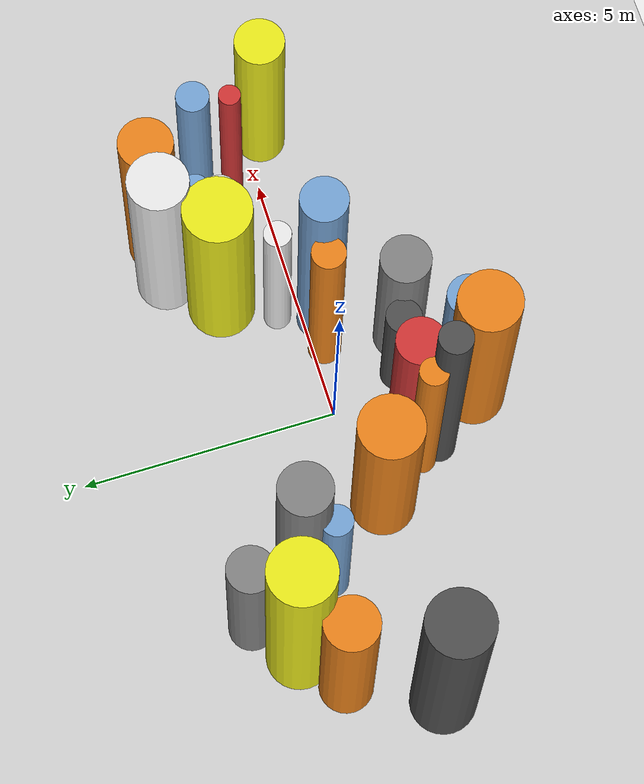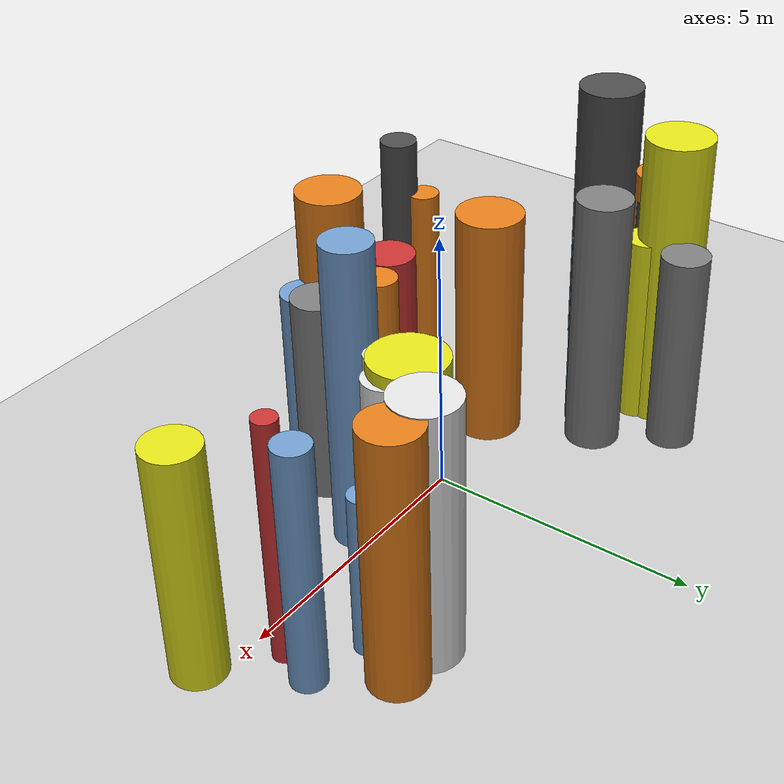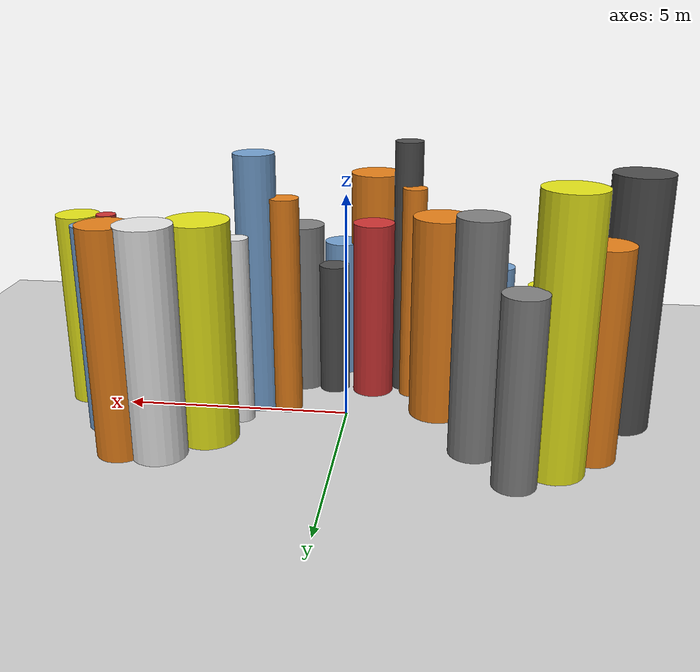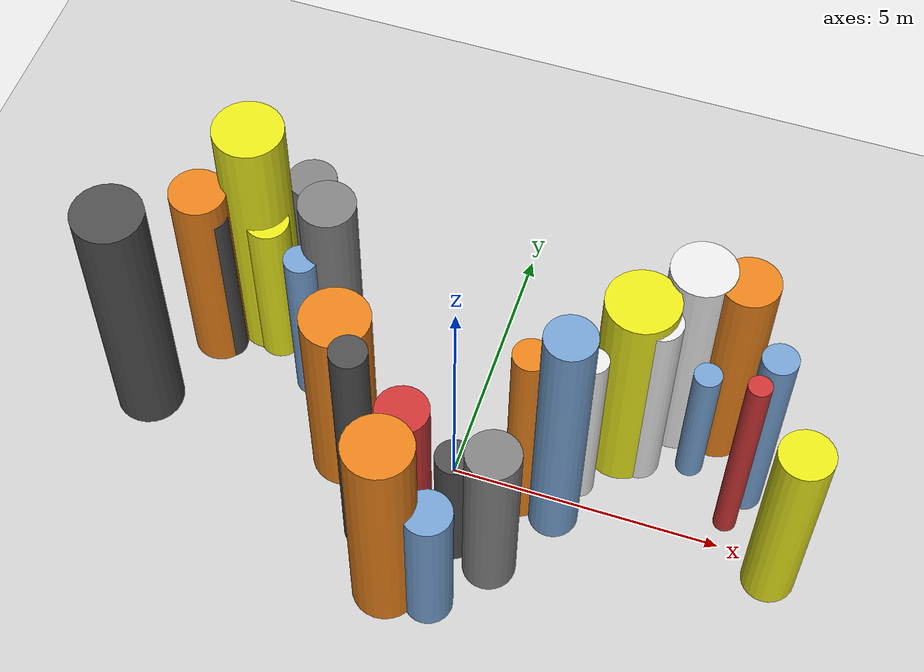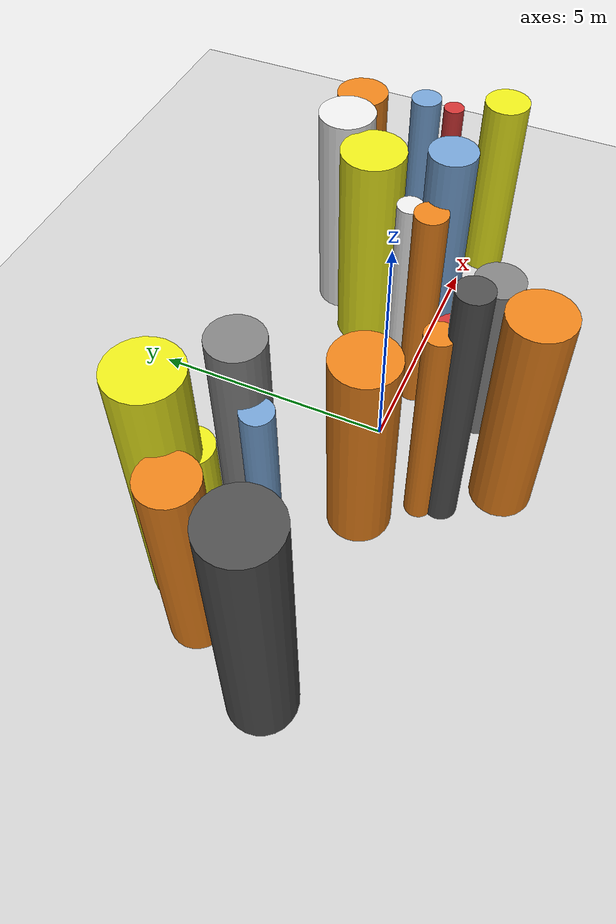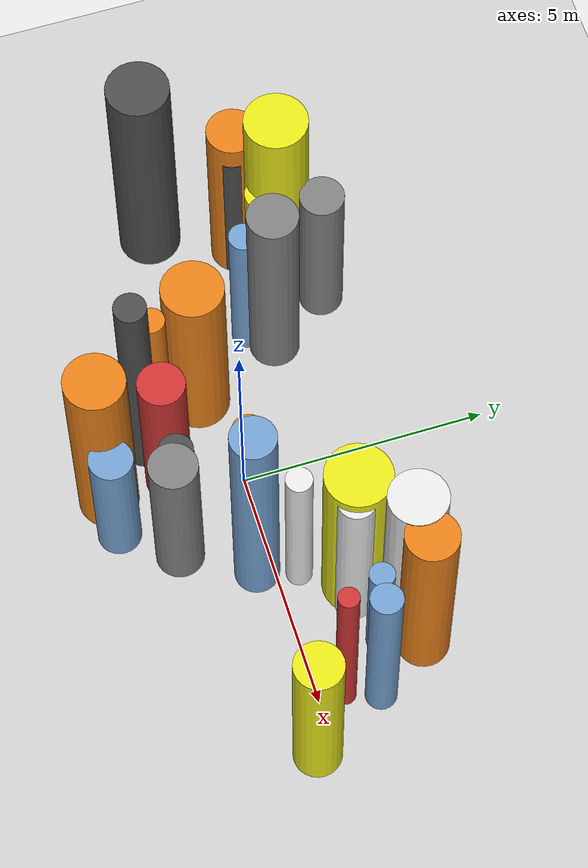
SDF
<?xml version='1.0'?>
<sdf version='1.6'>
  <world name='routeA_rl_v1__dense_recovery__rl_train__s_turn_multi_obstacle__000095'>
    <!-- Sun light -->
    <light name='sun' type='directional'>
      <cast_shadows>1</cast_shadows>
      <pose>0 0 10 0 0 0</pose>
      <diffuse>0.8 0.8 0.8 1</diffuse>
      <specular>0.2 0.2 0.2 1</specular>
      <attenuation>
        <range>1000</range>
        <constant>0.9</constant>
        <linear>0.01</linear>
        <quadratic>0.001</quadratic>
      </attenuation>
      <direction>-0.5 0.1 -0.9</direction>
    </light>

    <!-- Ground plane -->
    <model name='ground_plane'>
      <static>1</static>
      <link name='link'>
        <collision name='collision'>
          <geometry>
            <plane>
              <normal>0 0 1</normal>
              <size>100 100</size>
            </plane>
          </geometry>
          <surface>
            <contact>
              <collide_bitmask>65535</collide_bitmask>
              <ode/>
            </contact>
            <friction>
              <ode>
                <mu>100</mu>
                <mu2>50</mu2>
              </ode>
              <torsional><ode/></torsional>
            </friction>
            <bounce/>
          </surface>
          <max_contacts>10</max_contacts>
        </collision>
        <visual name='visual'>
          <cast_shadows>0</cast_shadows>
          <geometry>
            <plane>
              <normal>0 0 1</normal>
              <size>100 100</size>
            </plane>
          </geometry>
          <material>
            <script>
              <uri>file://media/materials/scripts/gazebo.material</uri>
              <n>Gazebo/Grey</n>
            </script>
          </material>
        </visual>
      </link>
    </model>

    <!-- Environment -->
    <magnetic_field>6e-06 2.3e-05 -4.2e-05</magnetic_field>
    <atmosphere type='adiabatic'/>
    <physics name='default_physics' default='0' type='ode'>
      <gravity>0 0 -9.8</gravity>
      <max_step_size>0.004</max_step_size>
      <real_time_factor>1</real_time_factor>
      <real_time_update_rate>250</real_time_update_rate>
    </physics>
    <scene>
      <ambient>0.4 0.4 0.4 1</ambient>
      <background>0.7 0.7 0.7 1</background>
      <shadows>1</shadows>
    </scene>
    <wind/>
    <spherical_coordinates>
      <surface_model>EARTH_WGS84</surface_model>
      <latitude_deg>0</latitude_deg>
      <longitude_deg>0</longitude_deg>
      <elevation>0</elevation>
      <heading_deg>0</heading_deg>
    </spherical_coordinates>

    <!-- ============ OBSTACLES (28) ============ -->
    <model name='s_turn_obs_0'>
      <static>1</static>
      <link name='link'>
        <visual name='visual'>
          <geometry>
            <cylinder>
              <radius>0.6328</radius>
              <length>5.5574</length>
            </cylinder>
          </geometry>
          <material>
            <script>
              <n>Gazebo/DarkGrey</n>
              <uri>file://media/materials/scripts/gazebo.material</uri>
            </script>
            <ambient>0.3 0.3 0.3 1</ambient>
          </material>
        </visual>
        <collision name='collision'>
          <geometry>
            <cylinder>
              <radius>0.6328</radius>
              <length>5.5574</length>
            </cylinder>
          </geometry>
          <max_contacts>10</max_contacts>
          <surface>
            <contact><ode/></contact>
            <bounce/>
            <friction>
              <ode><mu>1</mu><mu2>1</mu2></ode>
              <torsional><ode/></torsional>
            </friction>
          </surface>
        </collision>
      </link>
      <pose>-6.0000 -0.2310 2.7787 0 0 0.0000</pose>
    </model>

    <model name='s_turn_obs_1'>
      <static>1</static>
      <link name='link'>
        <visual name='visual'>
          <geometry>
            <cylinder>
              <radius>0.5158</radius>
              <length>4.4996</length>
            </cylinder>
          </geometry>
          <material>
            <script>
              <n>Gazebo/Orange</n>
              <uri>file://media/materials/scripts/gazebo.material</uri>
            </script>
            <ambient>0.9 0.5 0.1 1</ambient>
          </material>
        </visual>
        <collision name='collision'>
          <geometry>
            <cylinder>
              <radius>0.5158</radius>
              <length>4.4996</length>
            </cylinder>
          </geometry>
          <max_contacts>10</max_contacts>
          <surface>
            <contact><ode/></contact>
            <bounce/>
            <friction>
              <ode><mu>1</mu><mu2>1</mu2></ode>
              <torsional><ode/></torsional>
            </friction>
          </surface>
        </collision>
      </link>
      <pose>-5.2000 1.4091 2.2498 0 0 0.0000</pose>
    </model>

    <model name='s_turn_obs_2'>
      <static>1</static>
      <link name='link'>
        <visual name='visual'>
          <geometry>
            <cylinder>
              <radius>0.6329</radius>
              <length>5.7166</length>
            </cylinder>
          </geometry>
          <material>
            <script>
              <n>Gazebo/Yellow</n>
              <uri>file://media/materials/scripts/gazebo.material</uri>
            </script>
            <ambient>0.9 0.9 0.1 1</ambient>
          </material>
        </visual>
        <collision name='collision'>
          <geometry>
            <cylinder>
              <radius>0.6329</radius>
              <length>5.7166</length>
            </cylinder>
          </geometry>
          <max_contacts>10</max_contacts>
          <surface>
            <contact><ode/></contact>
            <bounce/>
            <friction>
              <ode><mu>1</mu><mu2>1</mu2></ode>
              <torsional><ode/></torsional>
            </friction>
          </surface>
        </collision>
      </link>
      <pose>-4.4000 2.0710 2.8583 0 0 0.0000</pose>
    </model>

    <model name='s_turn_obs_3'>
      <static>1</static>
      <link name='link'>
        <visual name='visual'>
          <geometry>
            <cylinder>
              <radius>0.4479</radius>
              <length>3.9116</length>
            </cylinder>
          </geometry>
          <material>
            <script>
              <n>Gazebo/Grey</n>
              <uri>file://media/materials/scripts/gazebo.material</uri>
            </script>
            <ambient>0.5 0.5 0.5 1</ambient>
          </material>
        </visual>
        <collision name='collision'>
          <geometry>
            <cylinder>
              <radius>0.4479</radius>
              <length>3.9116</length>
            </cylinder>
          </geometry>
          <max_contacts>10</max_contacts>
          <surface>
            <contact><ode/></contact>
            <bounce/>
            <friction>
              <ode><mu>1</mu><mu2>1</mu2></ode>
              <torsional><ode/></torsional>
            </friction>
          </surface>
        </collision>
      </link>
      <pose>-3.6000 2.7536 1.9558 0 0 0.0000</pose>
    </model>

    <model name='s_turn_obs_4'>
      <static>1</static>
      <link name='link'>
        <visual name='visual'>
          <geometry>
            <cylinder>
              <radius>0.5116</radius>
              <length>5.0095</length>
            </cylinder>
          </geometry>
          <material>
            <script>
              <n>Gazebo/Grey</n>
              <uri>file://media/materials/scripts/gazebo.material</uri>
            </script>
            <ambient>0.5 0.5 0.5 1</ambient>
          </material>
        </visual>
        <collision name='collision'>
          <geometry>
            <cylinder>
              <radius>0.5116</radius>
              <length>5.0095</length>
            </cylinder>
          </geometry>
          <max_contacts>10</max_contacts>
          <surface>
            <contact><ode/></contact>
            <bounce/>
            <friction>
              <ode><mu>1</mu><mu2>1</mu2></ode>
              <torsional><ode/></torsional>
            </friction>
          </surface>
        </collision>
      </link>
      <pose>-2.8000 1.5076 2.5048 0 0 0.0000</pose>
    </model>

    <model name='s_turn_obs_5'>
      <static>1</static>
      <link name='link'>
        <visual name='visual'>
          <geometry>
            <cylinder>
              <radius>0.6219</radius>
              <length>4.5238</length>
            </cylinder>
          </geometry>
          <material>
            <script>
              <n>Gazebo/Orange</n>
              <uri>file://media/materials/scripts/gazebo.material</uri>
            </script>
            <ambient>0.9 0.5 0.1 1</ambient>
          </material>
        </visual>
        <collision name='collision'>
          <geometry>
            <cylinder>
              <radius>0.6219</radius>
              <length>4.5238</length>
            </cylinder>
          </geometry>
          <max_contacts>10</max_contacts>
          <surface>
            <contact><ode/></contact>
            <bounce/>
            <friction>
              <ode><mu>1</mu><mu2>1</mu2></ode>
              <torsional><ode/></torsional>
            </friction>
          </surface>
        </collision>
      </link>
      <pose>-2.0000 -0.3390 2.2619 0 0 0.0000</pose>
    </model>

    <model name='s_turn_obs_6'>
      <static>1</static>
      <link name='link'>
        <visual name='visual'>
          <geometry>
            <cylinder>
              <radius>0.3187</radius>
              <length>5.8544</length>
            </cylinder>
          </geometry>
          <material>
            <script>
              <n>Gazebo/DarkGrey</n>
              <uri>file://media/materials/scripts/gazebo.material</uri>
            </script>
            <ambient>0.3 0.3 0.3 1</ambient>
          </material>
        </visual>
        <collision name='collision'>
          <geometry>
            <cylinder>
              <radius>0.3187</radius>
              <length>5.8544</length>
            </cylinder>
          </geometry>
          <max_contacts>10</max_contacts>
          <surface>
            <contact><ode/></contact>
            <bounce/>
            <friction>
              <ode><mu>1</mu><mu2>1</mu2></ode>
              <torsional><ode/></torsional>
            </friction>
          </surface>
        </collision>
      </link>
      <pose>-1.2000 -1.7234 2.9272 0 0 0.0000</pose>
    </model>

    <model name='s_turn_obs_7'>
      <static>1</static>
      <link name='link'>
        <visual name='visual'>
          <geometry>
            <cylinder>
              <radius>0.6048</radius>
              <length>4.9542</length>
            </cylinder>
          </geometry>
          <material>
            <script>
              <n>Gazebo/Orange</n>
              <uri>file://media/materials/scripts/gazebo.material</uri>
            </script>
            <ambient>0.9 0.5 0.1 1</ambient>
          </material>
        </visual>
        <collision name='collision'>
          <geometry>
            <cylinder>
              <radius>0.6048</radius>
              <length>4.9542</length>
            </cylinder>
          </geometry>
          <max_contacts>10</max_contacts>
          <surface>
            <contact><ode/></contact>
            <bounce/>
            <friction>
              <ode><mu>1</mu><mu2>1</mu2></ode>
              <torsional><ode/></torsional>
            </friction>
          </surface>
        </collision>
      </link>
      <pose>-0.4000 -2.6859 2.4771 0 0 0.0000</pose>
    </model>

    <model name='s_turn_obs_8'>
      <static>1</static>
      <link name='link'>
        <visual name='visual'>
          <geometry>
            <cylinder>
              <radius>0.4381</radius>
              <length>3.2741</length>
            </cylinder>
          </geometry>
          <material>
            <script>
              <n>Gazebo/Blue</n>
              <uri>file://media/materials/scripts/gazebo.material</uri>
            </script>
            <ambient>0.447 0.624 0.812 1</ambient>
          </material>
        </visual>
        <collision name='collision'>
          <geometry>
            <cylinder>
              <radius>0.4381</radius>
              <length>3.2741</length>
            </cylinder>
          </geometry>
          <max_contacts>10</max_contacts>
          <surface>
            <contact><ode/></contact>
            <bounce/>
            <friction>
              <ode><mu>1</mu><mu2>1</mu2></ode>
              <torsional><ode/></torsional>
            </friction>
          </surface>
        </collision>
      </link>
      <pose>0.4000 -2.6880 1.6371 0 0 0.0000</pose>
    </model>

    <model name='s_turn_obs_9'>
      <static>1</static>
      <link name='link'>
        <visual name='visual'>
          <geometry>
            <cylinder>
              <radius>0.4829</radius>
              <length>3.9170</length>
            </cylinder>
          </geometry>
          <material>
            <script>
              <n>Gazebo/Grey</n>
              <uri>file://media/materials/scripts/gazebo.material</uri>
            </script>
            <ambient>0.5 0.5 0.5 1</ambient>
          </material>
        </visual>
        <collision name='collision'>
          <geometry>
            <cylinder>
              <radius>0.4829</radius>
              <length>3.9170</length>
            </cylinder>
          </geometry>
          <max_contacts>10</max_contacts>
          <surface>
            <contact><ode/></contact>
            <bounce/>
            <friction>
              <ode><mu>1</mu><mu2>1</mu2></ode>
              <torsional><ode/></torsional>
            </friction>
          </surface>
        </collision>
      </link>
      <pose>1.2000 -1.6720 1.9585 0 0 0.0000</pose>
    </model>

    <model name='s_turn_obs_10'>
      <static>1</static>
      <link name='link'>
        <visual name='visual'>
          <geometry>
            <cylinder>
              <radius>0.4491</radius>
              <length>5.7766</length>
            </cylinder>
          </geometry>
          <material>
            <script>
              <n>Gazebo/Blue</n>
              <uri>file://media/materials/scripts/gazebo.material</uri>
            </script>
            <ambient>0.447 0.624 0.812 1</ambient>
          </material>
        </visual>
        <collision name='collision'>
          <geometry>
            <cylinder>
              <radius>0.4491</radius>
              <length>5.7766</length>
            </cylinder>
          </geometry>
          <max_contacts>10</max_contacts>
          <surface>
            <contact><ode/></contact>
            <bounce/>
            <friction>
              <ode><mu>1</mu><mu2>1</mu2></ode>
              <torsional><ode/></torsional>
            </friction>
          </surface>
        </collision>
      </link>
      <pose>2.0000 -0.3300 2.8883 0 0 0.0000</pose>
    </model>

    <model name='s_turn_obs_11'>
      <static>1</static>
      <link name='link'>
        <visual name='visual'>
          <geometry>
            <cylinder>
              <radius>0.6571</radius>
              <length>4.7496</length>
            </cylinder>
          </geometry>
          <material>
            <script>
              <n>Gazebo/Yellow</n>
              <uri>file://media/materials/scripts/gazebo.material</uri>
            </script>
            <ambient>0.9 0.9 0.1 1</ambient>
          </material>
        </visual>
        <collision name='collision'>
          <geometry>
            <cylinder>
              <radius>0.6571</radius>
              <length>4.7496</length>
            </cylinder>
          </geometry>
          <max_contacts>10</max_contacts>
          <surface>
            <contact><ode/></contact>
            <bounce/>
            <friction>
              <ode><mu>1</mu><mu2>1</mu2></ode>
              <torsional><ode/></torsional>
            </friction>
          </surface>
        </collision>
      </link>
      <pose>2.8000 1.4303 2.3748 0 0 0.0000</pose>
    </model>

    <model name='s_turn_obs_12'>
      <static>1</static>
      <link name='link'>
        <visual name='visual'>
          <geometry>
            <cylinder>
              <radius>0.5816</radius>
              <length>4.8610</length>
            </cylinder>
          </geometry>
          <material>
            <script>
              <n>Gazebo/White</n>
              <uri>file://media/materials/scripts/gazebo.material</uri>
            </script>
            <ambient>0.9 0.9 0.9 1</ambient>
          </material>
        </visual>
        <collision name='collision'>
          <geometry>
            <cylinder>
              <radius>0.5816</radius>
              <length>4.8610</length>
            </cylinder>
          </geometry>
          <max_contacts>10</max_contacts>
          <surface>
            <contact><ode/></contact>
            <bounce/>
            <friction>
              <ode><mu>1</mu><mu2>1</mu2></ode>
              <torsional><ode/></torsional>
            </friction>
          </surface>
        </collision>
      </link>
      <pose>3.6000 2.3112 2.4305 0 0 0.0000</pose>
    </model>

    <model name='s_turn_obs_13'>
      <static>1</static>
      <link name='link'>
        <visual name='visual'>
          <geometry>
            <cylinder>
              <radius>0.5205</radius>
              <length>4.8434</length>
            </cylinder>
          </geometry>
          <material>
            <script>
              <n>Gazebo/Orange</n>
              <uri>file://media/materials/scripts/gazebo.material</uri>
            </script>
            <ambient>0.9 0.5 0.1 1</ambient>
          </material>
        </visual>
        <collision name='collision'>
          <geometry>
            <cylinder>
              <radius>0.5205</radius>
              <length>4.8434</length>
            </cylinder>
          </geometry>
          <max_contacts>10</max_contacts>
          <surface>
            <contact><ode/></contact>
            <bounce/>
            <friction>
              <ode><mu>1</mu><mu2>1</mu2></ode>
              <torsional><ode/></torsional>
            </friction>
          </surface>
        </collision>
      </link>
      <pose>4.4000 2.3098 2.4217 0 0 0.0000</pose>
    </model>

    <model name='s_turn_obs_14'>
      <static>1</static>
      <link name='link'>
        <visual name='visual'>
          <geometry>
            <cylinder>
              <radius>0.3151</radius>
              <length>4.5157</length>
            </cylinder>
          </geometry>
          <material>
            <script>
              <n>Gazebo/Blue</n>
              <uri>file://media/materials/scripts/gazebo.material</uri>
            </script>
            <ambient>0.447 0.624 0.812 1</ambient>
          </material>
        </visual>
        <collision name='collision'>
          <geometry>
            <cylinder>
              <radius>0.3151</radius>
              <length>4.5157</length>
            </cylinder>
          </geometry>
          <max_contacts>10</max_contacts>
          <surface>
            <contact><ode/></contact>
            <bounce/>
            <friction>
              <ode><mu>1</mu><mu2>1</mu2></ode>
              <torsional><ode/></torsional>
            </friction>
          </surface>
        </collision>
      </link>
      <pose>5.2000 1.1922 2.2578 0 0 0.0000</pose>
    </model>

    <model name='s_turn_obs_15'>
      <static>1</static>
      <link name='link'>
        <visual name='visual'>
          <geometry>
            <cylinder>
              <radius>0.4796</radius>
              <length>4.3432</length>
            </cylinder>
          </geometry>
          <material>
            <script>
              <n>Gazebo/Yellow</n>
              <uri>file://media/materials/scripts/gazebo.material</uri>
            </script>
            <ambient>0.9 0.9 0.1 1</ambient>
          </material>
        </visual>
        <collision name='collision'>
          <geometry>
            <cylinder>
              <radius>0.4796</radius>
              <length>4.3432</length>
            </cylinder>
          </geometry>
          <max_contacts>10</max_contacts>
          <surface>
            <contact><ode/></contact>
            <bounce/>
            <friction>
              <ode><mu>1</mu><mu2>1</mu2></ode>
              <torsional><ode/></torsional>
            </friction>
          </surface>
        </collision>
      </link>
      <pose>6.0000 -0.3422 2.1716 0 0 0.0000</pose>
    </model>

    <model name='s_turn_obs2_0'>
      <static>1</static>
      <link name='link'>
        <visual name='visual'>
          <geometry>
            <cylinder>
              <radius>0.3253</radius>
              <length>3.9898</length>
            </cylinder>
          </geometry>
          <material>
            <script>
              <n>Gazebo/DarkGrey</n>
              <uri>file://media/materials/scripts/gazebo.material</uri>
            </script>
            <ambient>0.3 0.3 0.3 1</ambient>
          </material>
        </visual>
        <collision name='collision'>
          <geometry>
            <cylinder>
              <radius>0.3253</radius>
              <length>3.9898</length>
            </cylinder>
          </geometry>
          <max_contacts>10</max_contacts>
          <surface>
            <contact><ode/></contact>
            <bounce/>
            <friction>
              <ode><mu>1</mu><mu2>1</mu2></ode>
              <torsional><ode/></torsional>
            </friction>
          </surface>
        </collision>
      </link>
      <pose>-5.0000 1.3423 1.9949 0 0 0.0000</pose>
    </model>

    <model name='s_turn_obs2_1'>
      <static>1</static>
      <link name='link'>
        <visual name='visual'>
          <geometry>
            <cylinder>
              <radius>0.3991</radius>
              <length>3.7325</length>
            </cylinder>
          </geometry>
          <material>
            <script>
              <n>Gazebo/Yellow</n>
              <uri>file://media/materials/scripts/gazebo.material</uri>
            </script>
            <ambient>0.9 0.9 0.1 1</ambient>
          </material>
        </visual>
        <collision name='collision'>
          <geometry>
            <cylinder>
              <radius>0.3991</radius>
              <length>3.7325</length>
            </cylinder>
          </geometry>
          <max_contacts>10</max_contacts>
          <surface>
            <contact><ode/></contact>
            <bounce/>
            <friction>
              <ode><mu>1</mu><mu2>1</mu2></ode>
              <torsional><ode/></torsional>
            </friction>
          </surface>
        </collision>
      </link>
      <pose>-4.0909 1.7308 1.8663 0 0 0.0000</pose>
    </model>

    <model name='s_turn_obs2_2'>
      <static>1</static>
      <link name='link'>
        <visual name='visual'>
          <geometry>
            <cylinder>
              <radius>0.3025</radius>
              <length>3.8868</length>
            </cylinder>
          </geometry>
          <material>
            <script>
              <n>Gazebo/Blue</n>
              <uri>file://media/materials/scripts/gazebo.material</uri>
            </script>
            <ambient>0.447 0.624 0.812 1</ambient>
          </material>
        </visual>
        <collision name='collision'>
          <geometry>
            <cylinder>
              <radius>0.3025</radius>
              <length>3.8868</length>
            </cylinder>
          </geometry>
          <max_contacts>10</max_contacts>
          <surface>
            <contact><ode/></contact>
            <bounce/>
            <friction>
              <ode><mu>1</mu><mu2>1</mu2></ode>
              <torsional><ode/></torsional>
            </friction>
          </surface>
        </collision>
      </link>
      <pose>-3.1818 1.0285 1.9434 0 0 0.0000</pose>
    </model>

    <model name='s_turn_obs2_3'>
      <static>1</static>
      <link name='link'>
        <visual name='visual'>
          <geometry>
            <cylinder>
              <radius>0.2294</radius>
              <length>3.9897</length>
            </cylinder>
          </geometry>
          <material>
            <script>
              <n>Gazebo/Blue</n>
              <uri>file://media/materials/scripts/gazebo.material</uri>
            </script>
            <ambient>0.447 0.624 0.812 1</ambient>
          </material>
        </visual>
        <collision name='collision'>
          <geometry>
            <cylinder>
              <radius>0.2294</radius>
              <length>3.9897</length>
            </cylinder>
          </geometry>
          <max_contacts>10</max_contacts>
          <surface>
            <contact><ode/></contact>
            <bounce/>
            <friction>
              <ode><mu>1</mu><mu2>1</mu2></ode>
              <torsional><ode/></torsional>
            </friction>
          </surface>
        </collision>
      </link>
      <pose>-2.2727 -0.0826 1.9948 0 0 0.0000</pose>
    </model>

    <model name='s_turn_obs2_4'>
      <static>1</static>
      <link name='link'>
        <visual name='visual'>
          <geometry>
            <cylinder>
              <radius>0.2745</radius>
              <length>4.8975</length>
            </cylinder>
          </geometry>
          <material>
            <script>
              <n>Gazebo/Orange</n>
              <uri>file://media/materials/scripts/gazebo.material</uri>
            </script>
            <ambient>0.9 0.5 0.1 1</ambient>
          </material>
        </visual>
        <collision name='collision'>
          <geometry>
            <cylinder>
              <radius>0.2745</radius>
              <length>4.8975</length>
            </cylinder>
          </geometry>
          <max_contacts>10</max_contacts>
          <surface>
            <contact><ode/></contact>
            <bounce/>
            <friction>
              <ode><mu>1</mu><mu2>1</mu2></ode>
              <torsional><ode/></torsional>
            </friction>
          </surface>
        </collision>
      </link>
      <pose>-1.3636 -1.3243 2.4488 0 0 0.0000</pose>
    </model>

    <model name='s_turn_obs2_5'>
      <static>1</static>
      <link name='link'>
        <visual name='visual'>
          <geometry>
            <cylinder>
              <radius>0.4700</radius>
              <length>4.0668</length>
            </cylinder>
          </geometry>
          <material>
            <script>
              <n>Gazebo/Red</n>
              <uri>file://media/materials/scripts/gazebo.material</uri>
            </script>
            <ambient>0.8 0.2 0.2 1</ambient>
          </material>
        </visual>
        <collision name='collision'>
          <geometry>
            <cylinder>
              <radius>0.4700</radius>
              <length>4.0668</length>
            </cylinder>
          </geometry>
          <max_contacts>10</max_contacts>
          <surface>
            <contact><ode/></contact>
            <bounce/>
            <friction>
              <ode><mu>1</mu><mu2>1</mu2></ode>
              <torsional><ode/></torsional>
            </friction>
          </surface>
        </collision>
      </link>
      <pose>-0.4545 -1.4183 2.0334 0 0 0.0000</pose>
    </model>

    <model name='s_turn_obs2_6'>
      <static>1</static>
      <link name='link'>
        <visual name='visual'>
          <geometry>
            <cylinder>
              <radius>0.3433</radius>
              <length>3.0528</length>
            </cylinder>
          </geometry>
          <material>
            <script>
              <n>Gazebo/DarkGrey</n>
              <uri>file://media/materials/scripts/gazebo.material</uri>
            </script>
            <ambient>0.3 0.3 0.3 1</ambient>
          </material>
        </visual>
        <collision name='collision'>
          <geometry>
            <cylinder>
              <radius>0.3433</radius>
              <length>3.0528</length>
            </cylinder>
          </geometry>
          <max_contacts>10</max_contacts>
          <surface>
            <contact><ode/></contact>
            <bounce/>
            <friction>
              <ode><mu>1</mu><mu2>1</mu2></ode>
              <torsional><ode/></torsional>
            </friction>
          </surface>
        </collision>
      </link>
      <pose>0.4545 -1.4298 1.5264 0 0 0.0000</pose>
    </model>

    <model name='s_turn_obs2_7'>
      <static>1</static>
      <link name='link'>
        <visual name='visual'>
          <geometry>
            <cylinder>
              <radius>0.3226</radius>
              <length>4.8533</length>
            </cylinder>
          </geometry>
          <material>
            <script>
              <n>Gazebo/Orange</n>
              <uri>file://media/materials/scripts/gazebo.material</uri>
            </script>
            <ambient>0.9 0.5 0.1 1</ambient>
          </material>
        </visual>
        <collision name='collision'>
          <geometry>
            <cylinder>
              <radius>0.3226</radius>
              <length>4.8533</length>
            </cylinder>
          </geometry>
          <max_contacts>10</max_contacts>
          <surface>
            <contact><ode/></contact>
            <bounce/>
            <friction>
              <ode><mu>1</mu><mu2>1</mu2></ode>
              <torsional><ode/></torsional>
            </friction>
          </surface>
        </collision>
      </link>
      <pose>1.3636 -0.2297 2.4267 0 0 0.0000</pose>
    </model>

    <model name='s_turn_obs2_8'>
      <static>1</static>
      <link name='link'>
        <visual name='visual'>
          <geometry>
            <cylinder>
              <radius>0.2643</radius>
              <length>4.1372</length>
            </cylinder>
          </geometry>
          <material>
            <script>
              <n>Gazebo/White</n>
              <uri>file://media/materials/scripts/gazebo.material</uri>
            </script>
            <ambient>0.9 0.9 0.9 1</ambient>
          </material>
        </visual>
        <collision name='collision'>
          <geometry>
            <cylinder>
              <radius>0.2643</radius>
              <length>4.1372</length>
            </cylinder>
          </geometry>
          <max_contacts>10</max_contacts>
          <surface>
            <contact><ode/></contact>
            <bounce/>
            <friction>
              <ode><mu>1</mu><mu2>1</mu2></ode>
              <torsional><ode/></torsional>
            </friction>
          </surface>
        </collision>
      </link>
      <pose>2.2727 0.4517 2.0686 0 0 0.0000</pose>
    </model>

    <model name='s_turn_obs2_9'>
      <static>1</static>
      <link name='link'>
        <visual name='visual'>
          <geometry>
            <cylinder>
              <radius>0.3770</radius>
              <length>4.5230</length>
            </cylinder>
          </geometry>
          <material>
            <script>
              <n>Gazebo/White</n>
              <uri>file://media/materials/scripts/gazebo.material</uri>
            </script>
            <ambient>0.9 0.9 0.9 1</ambient>
          </material>
        </visual>
        <collision name='collision'>
          <geometry>
            <cylinder>
              <radius>0.3770</radius>
              <length>4.5230</length>
            </cylinder>
          </geometry>
          <max_contacts>10</max_contacts>
          <surface>
            <contact><ode/></contact>
            <bounce/>
            <friction>
              <ode><mu>1</mu><mu2>1</mu2></ode>
              <torsional><ode/></torsional>
            </friction>
          </surface>
        </collision>
      </link>
      <pose>3.1818 1.2759 2.2615 0 0 0.0000</pose>
    </model>

    <model name='s_turn_obs2_10'>
      <static>1</static>
      <link name='link'>
        <visual name='visual'>
          <geometry>
            <cylinder>
              <radius>0.2526</radius>
              <length>3.0468</length>
            </cylinder>
          </geometry>
          <material>
            <script>
              <n>Gazebo/Blue</n>
              <uri>file://media/materials/scripts/gazebo.material</uri>
            </script>
            <ambient>0.447 0.624 0.812 1</ambient>
          </material>
        </visual>
        <collision name='collision'>
          <geometry>
            <cylinder>
              <radius>0.2526</radius>
              <length>3.0468</length>
            </cylinder>
          </geometry>
          <max_contacts>10</max_contacts>
          <surface>
            <contact><ode/></contact>
            <bounce/>
            <friction>
              <ode><mu>1</mu><mu2>1</mu2></ode>
              <torsional><ode/></torsional>
            </friction>
          </surface>
        </collision>
      </link>
      <pose>4.0909 1.5028 1.5234 0 0 0.0000</pose>
    </model>

    <model name='s_turn_obs2_11'>
      <static>1</static>
      <link name='link'>
        <visual name='visual'>
          <geometry>
            <cylinder>
              <radius>0.2080</radius>
              <length>4.5806</length>
            </cylinder>
          </geometry>
          <material>
            <script>
              <n>Gazebo/Red</n>
              <uri>file://media/materials/scripts/gazebo.material</uri>
            </script>
            <ambient>0.8 0.2 0.2 1</ambient>
          </material>
        </visual>
        <collision name='collision'>
          <geometry>
            <cylinder>
              <radius>0.2080</radius>
              <length>4.5806</length>
            </cylinder>
          </geometry>
          <max_contacts>10</max_contacts>
          <surface>
            <contact><ode/></contact>
            <bounce/>
            <friction>
              <ode><mu>1</mu><mu2>1</mu2></ode>
              <torsional><ode/></torsional>
            </friction>
          </surface>
        </collision>
      </link>
      <pose>5.0000 0.5356 2.2903 0 0 0.0000</pose>
    </model>

    <!-- GUI camera -->
    <gui fullscreen='0'>
      <camera name='user_camera'>
        <pose>-15 0 18 0 0.85 0.15</pose>
        <view_controller>orbit</view_controller>
        <projection_type>perspective</projection_type>
      </camera>
    </gui>
  </world>
</sdf>
